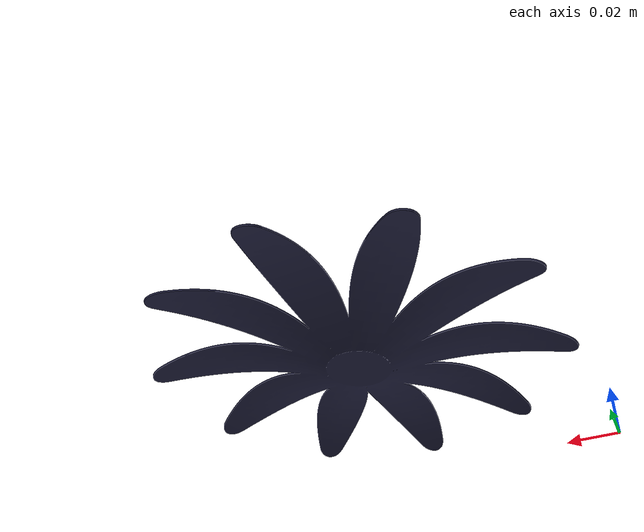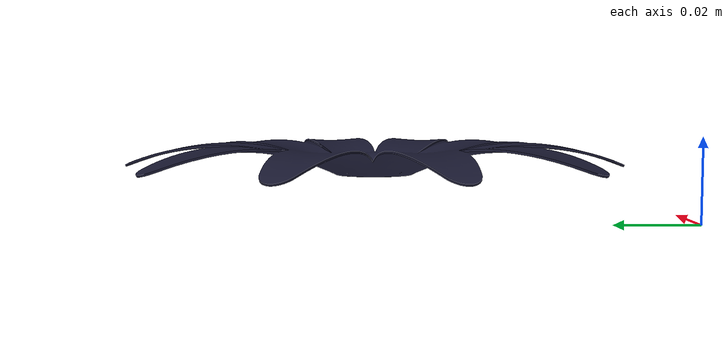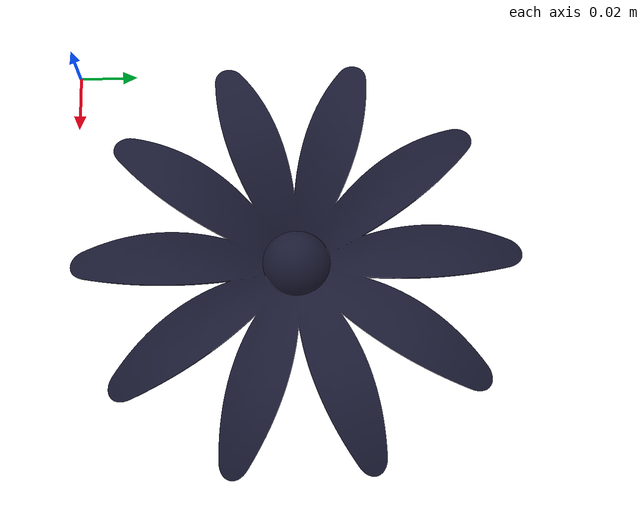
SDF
<?xml version="1.0" ?>
<sdf version="1.5">
  <model name="flower">
    <static>true</static>
    <link name="link">
      <pose>0 0 0 0 0 0</pose>
      <inertial>
        <mass>0.0354</mass>
        <inertia>
          <ixx>4.1178128125e-05</ixx>
          <ixy>0</ixy>
          <ixz>0</ixz>
          <iyy>4.1178128125e-05</iyy>
          <iyz>0</iyz>
          <izz>5.005781250000001e-06</izz>
        </inertia>
      </inertial>

      <collision name="collision">
        <geometry>
          <mesh>
            <uri>model://flower2/meshes/flower.STL</uri>
          </mesh>
        </geometry>
        <surface>
          <contact>
            <!-- stainless steel 18-8 -->
            <poissons_ratio>0.305</poissons_ratio>
            <elastic_modulus>2.0e+11</elastic_modulus>
            <ode>
              <kp>100000</kp>
              <kd>100</kd>
              <max_vel>100.0</max_vel>
              <min_depth>0.001</min_depth>
            </ode>
          </contact>
          <friction>
            <torsional>
              <coefficient>1.0</coefficient>
              <use_patch_radius>0</use_patch_radius>
              <surface_radius>0.01</surface_radius>
            </torsional>
          </friction>
        </surface>
      </collision>

      <visual name="visual">
        <geometry>
          <mesh>
            <uri>model://flower2/meshes/flower.STL</uri>
            <scale>0.002 0.002 0.002</scale>
          </mesh>
        </geometry>
        <material> <!-- Wheel material -->
          <ambient>1 0.1 0.1 1</ambient>
          <diffuse>0.1 0.1 0.2 1</diffuse>
          <specular>0 0 0 0</specular>
          <emissive>0 0 0 1</emissive>
        </material> <!-- End wheel material -->
      </visual>

    </link>
  </model>
</sdf>
